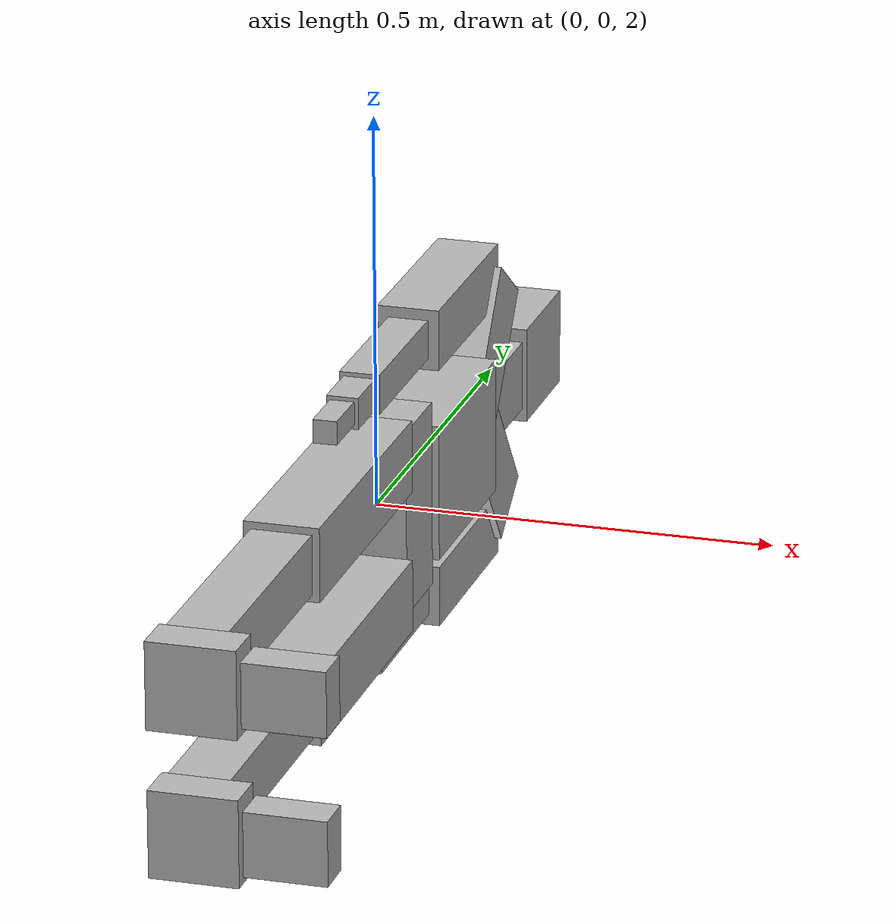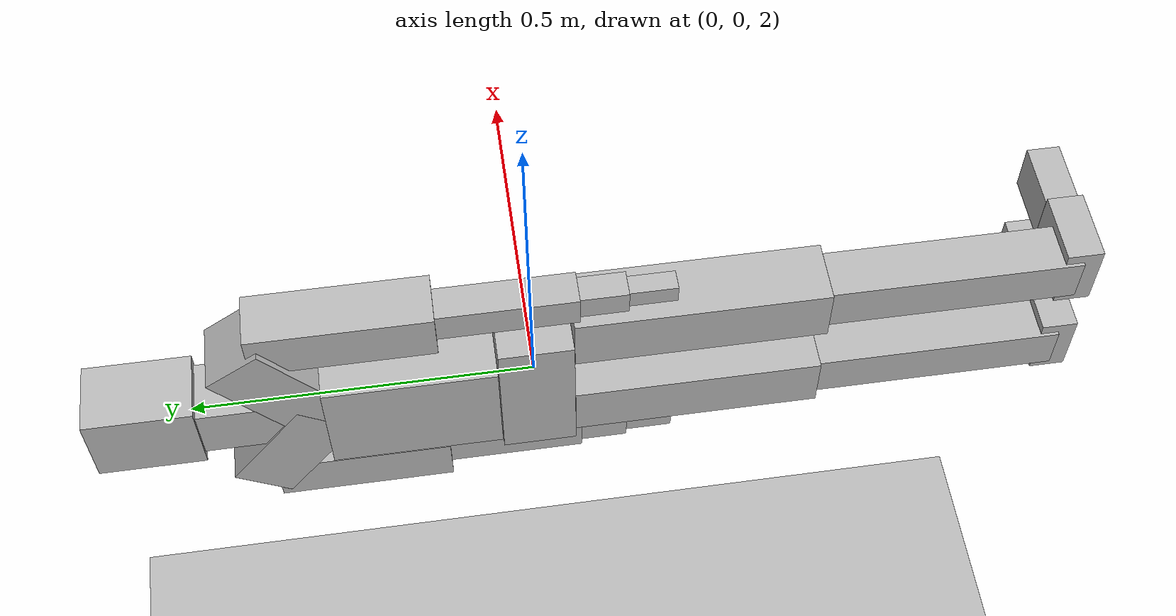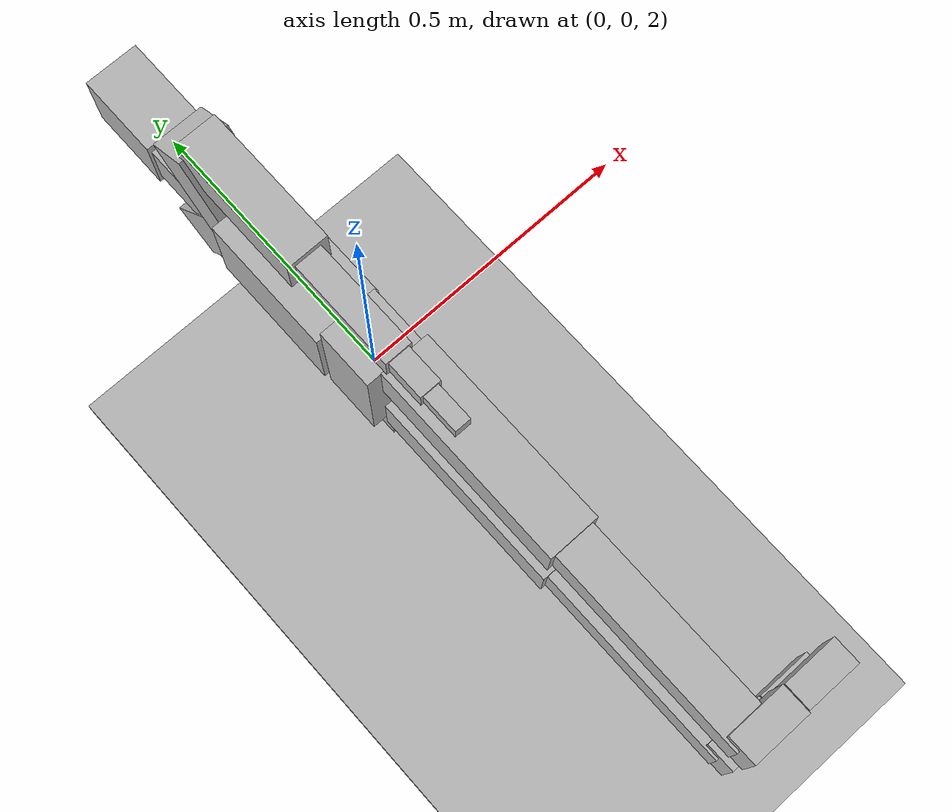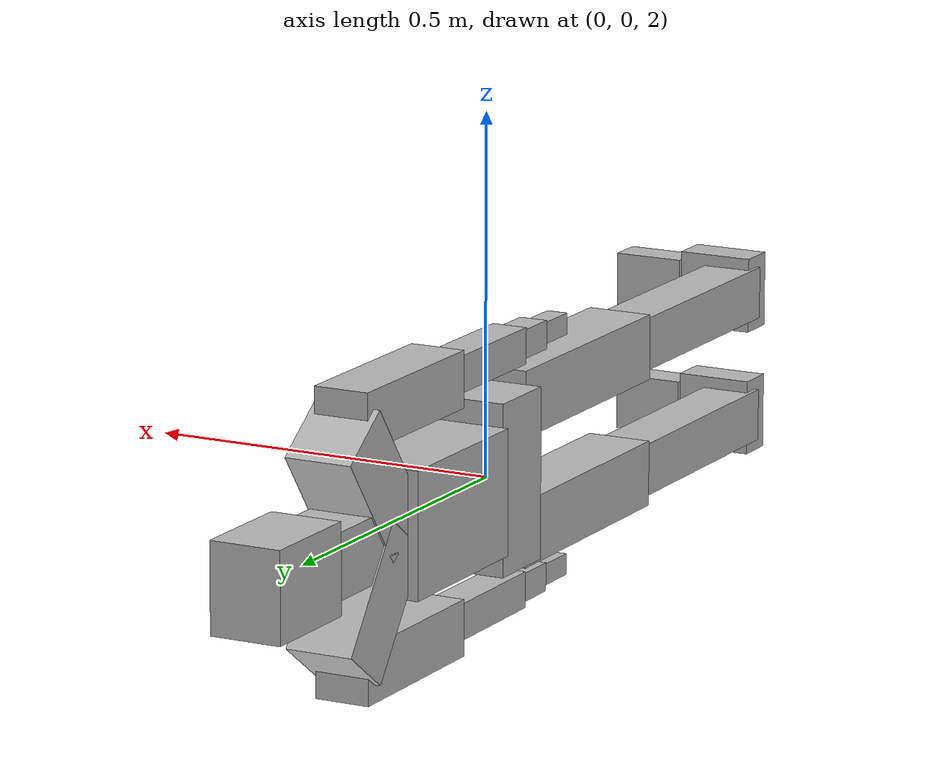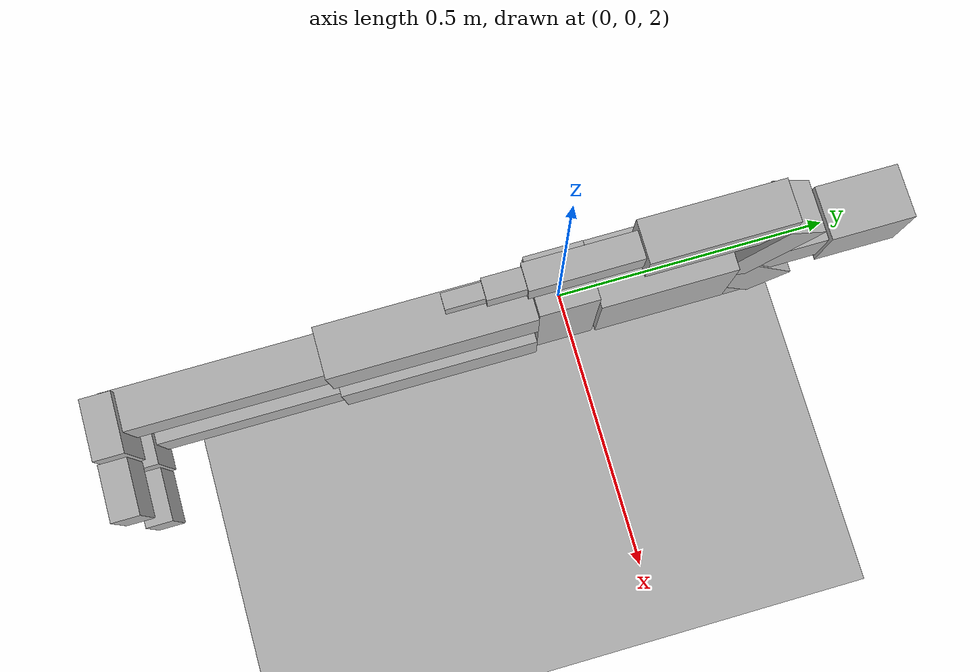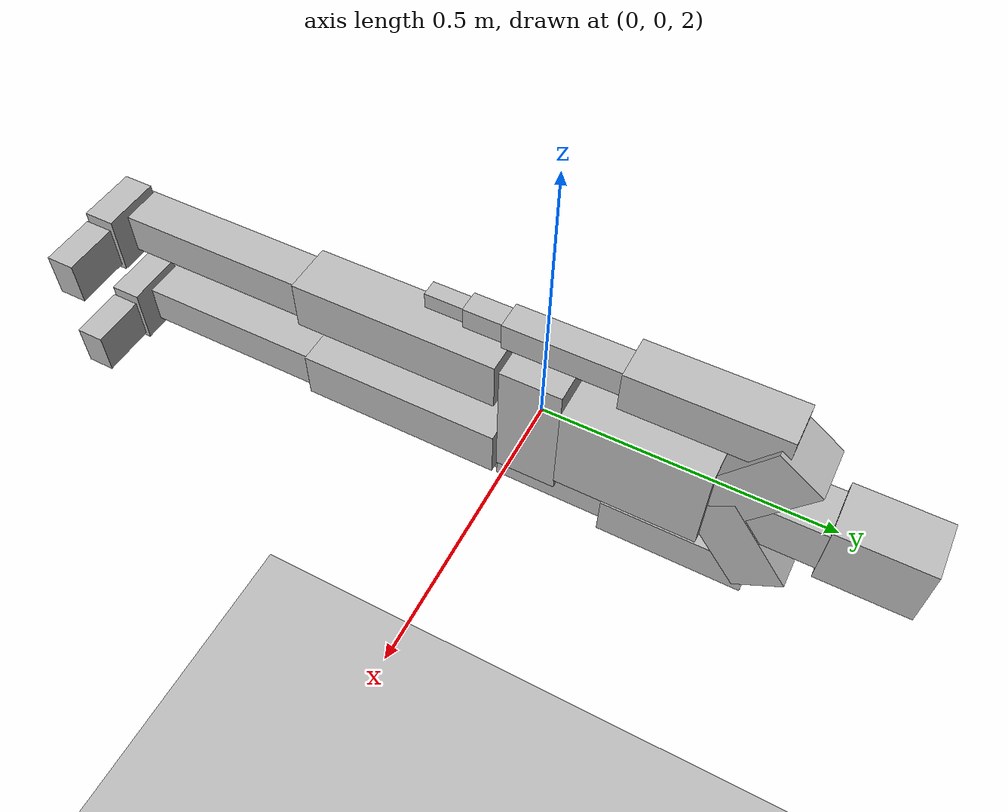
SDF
<sdf version="1.4">
 <world name="default">
  <physics type="ode">
   <gravity>0 0 -9.81</gravity>
   <max_step_size>0.001</max_step_size>
   <real_time_factor>1</real_time_factor>
   <real_time_update_rate>1000</real_time_update_rate>
   <ode>
    <solver><type>quick</type><iters>50</iters><sor>1.4</sor></solver>
    <constraints>
     <cfm>0</cfm>
     <erp>1</erp>
     <contact_max_correcting_vel>0</contact_max_correcting_vel>
     <contact_surface_layer>0</contact_surface_layer>
    </constraints>
   </ode>
  </physics>
  <model name="ground_model">
   <static>true</static>
   <link name="ground_link">
    <must_be_base_link>true</must_be_base_link>
    <visual name="visual">
     <geometry><box><size>10.0 10. 0.1</size></box></geometry>
     <material><script>Gazebo/WoodPallet</script></material>
    </visual>
    <collision name="collision"><geometry><box><size>10.0 10.0 0.1</size></box></geometry></collision>
   </link>
  </model>
  <model name="human_model">
   <pose>0 0 2 0 0 0</pose>
   <link name="h_pelvis">
    <self_collide>true</self_collide>
    <inertial><mass>5.6154</mass></inertial>
    <visual name="visual"><geometry><box><size>0.1088 0.1088 0.23936</size></box></geometry></visual>
    <collision name="collision"><geometry><box><size>0.1088 0.1088 0.23936</size></box></geometry></collision>
   </link>
   <link name="h_thigh_left">
    <self_collide>true</self_collide>
    <pose>0.01649408 -0.05774016 -0.09072832 0.0 0.0 0.0</pose>
    <inertial><mass>6.5709</mass></inertial>
    <visual name="visual">
     <pose>0.0 -0.18605 0.0 0.0 0.0 0.0</pose>
     <geometry><box><size>0.093025 0.3721 0.093025</size></box></geometry>
    </visual>
    <collision name="collision">
     <pose>0.0 -0.18605 0.0 0.0 0.0 0.0</pose>
     <geometry><box><size>0.093025 0.3721 0.093025</size></box></geometry>
    </collision>
   </link>
   <link name="h_shin_left">
    <self_collide>true</self_collide>
    <pose>0.01649408 -0.42984016 -0.09072832 0.0 0.0 0.0</pose>
    <inertial><mass>1.7738</mass></inertial>
    <visual name="visual">
     <pose>0.0 -0.18685 0.0 0.0 0.0 0.0</pose>
     <geometry><box><size>0.07474 0.3737 0.07474</size></box></geometry>
    </visual>
    <collision name="collision">
     <pose>0.0 -0.18685 0.0 0.0 0.0 0.0</pose>
     <geometry><box><size>0.07474 0.3737 0.07474</size></box></geometry>
    </collision>
   </link>
   <link name="h_heel_left">
    <self_collide>true</self_collide>
    <pose>0.01649408 -0.80354016 -0.09072832 0.0 0.0 0.0</pose>
    <inertial><mass>0.5831</mass></inertial>
    <visual name="visual">
     <pose>0.0216 0.0 0.0 0.0 0.0 0.0</pose>
     <geometry><box><size>0.1080 0.0540 0.1080</size></box></geometry>
    </visual>
    <collision name="collision">
     <pose>0.0216 0.0 0.0 0.0 0.0 0.0</pose>
     <geometry><box><size>0.1080 0.0540 0.1080</size></box></geometry>
    </collision>
   </link>
   <link name="h_toe_left">
    <self_collide>true</self_collide>
    <pose>0.12649408 -0.80354016 -0.09072832 0.0 0.0 0.0</pose>
    <inertial><mass>0.50</mass></inertial>
    <visual name="visual">
     <pose>0.02 0.0 0.0 0.0 0.0 0.0</pose>
     <geometry><box><size>0.1000 0.0500 0.0800</size></box></geometry>
    </visual>
    <collision name="collision">
     <pose>0.02 0.0 0.0 0.0 0.0 0.0</pose>
     <geometry><box><size>0.1000 0.0500 0.0800</size></box></geometry>
    </collision>
   </link>
   <link name="h_thigh_right">
    <self_collide>true</self_collide>
    <pose>0.01649408 -0.05774016 0.09072832 0.0 0.0 0.0</pose>
    <inertial><mass>6.5709</mass></inertial>
    <visual name="visual">
     <pose>0.0 -0.18605 0.0 0.0 0.0 0.0</pose>
     <geometry><box><size>0.093025 0.3721 0.093025</size></box></geometry>
    </visual>
    <collision name="collision">
     <pose>0.0 -0.18605 0.0 0.0 0.0 0.0</pose>
     <geometry><box><size>0.093025 0.3721 0.093025</size></box></geometry>
    </collision>
   </link>
   <link name="h_shin_right">
    <self_collide>true</self_collide>
    <pose>0.01649408 -0.42984016 0.09072832 0.0 0.0 0.0</pose>
    <inertial><mass>1.7738</mass></inertial>
    <visual name="visual">
     <pose>0.0 -0.18685 0.0 0.0 0.0 0.0</pose>
     <geometry><box><size>0.07474 0.3737 0.07474</size></box></geometry>
    </visual>
    <collision name="collision">
     <pose>0.0 -0.18685 0.0 0.0 0.0 0.0</pose>
     <geometry><box><size>0.07474 0.3737 0.07474</size></box></geometry>
    </collision>
   </link>
   <link name="h_heel_right">
    <self_collide>true</self_collide>
    <pose>0.01649408 -0.80354016 0.09072832 0.0 0.0 0.0</pose>
    <inertial><mass>0.5831</mass></inertial>
    <visual name="visual">
     <pose>0.0216 0.0 0.0 0.0 0.0 0.0</pose>
     <geometry><box><size>0.1080 0.0540 0.1080</size></box></geometry>
    </visual>
    <collision name="collision">
     <pose>0.0216 0.0 0.0 0.0 0.0 0.0</pose>
     <geometry><box><size>0.1080 0.0540 0.1080</size></box></geometry>
    </collision>
   </link>
   <link name="h_toe_right">
    <self_collide>true</self_collide>
    <pose>0.12649408 -0.80354016 0.09072832 0.0 0.0 0.0</pose>
    <inertial><mass>0.50</mass></inertial>
    <visual name="visual">
     <pose>0.02 0.0 0.0 0.0 0.0 0.0</pose>
     <geometry><box><size>0.1000 0.0500 0.0800</size></box></geometry>
    </visual>
    <collision name="collision">
     <pose>0.02 0.0 0.0 0.0 0.0 0.0</pose>
     <geometry><box><size>0.1000 0.0500 0.0800</size></box></geometry>
    </collision>
   </link>
   <link name="h_abdomen">
    <self_collide>true</self_collide>
    <pose>0.0 0.0562 0.0 0.0 0.0 0.0</pose>
    <inertial><mass>4.1846</mass></inertial>
    <visual name="visual">
     <pose>0.0 0.12535 0.0 0.0 0.0 0.0</pose>
     <geometry><box><size>0.12535 0.2507 0.17549</size></box></geometry>
    </visual>
    <collision name="collision">
     <pose>0.0 0.12535 0.0 0.0 0.0 0.0</pose>
     <geometry><box><size>0.12535 0.2507 0.17549</size></box></geometry>
    </collision>
   </link>
   <link name="h_spine">
    <self_collide>true</self_collide>
    <pose>0.0 0.3069 0.0 0.0 0.0 0.0</pose>
    <inertial><mass>4.8608</mass></inertial>
    <visual name="visual">
     <pose>0.0 0.0908 0.0 0.0 0.0 0.0</pose>
     <geometry><box><size>0.0908 0.1816 0.0908</size></box></geometry>
    </visual>
    <collision name="collision">
     <pose>0.0 0.0908 0.0 0.0 0.0 0.0</pose>
     <geometry><box><size>0.0908 0.1816 0.0908</size></box></geometry>
    </collision>
   </link>
   <link name="h_head">
    <self_collide>true</self_collide>
    <pose>0.0 0.4885 0.0 0.0 0.0 0.0</pose>
    <inertial><mass>3.92</mass></inertial>
    <visual name="visual">
     <pose>0.0 0.07825 0.0 0.0 0.0 0.0</pose>
     <geometry><box><size>0.101725 0.1565 0.1252</size></box></geometry>
    </visual>
    <collision name="collision">
     <pose>0.0 0.07825 0.0 0.0 0.0 0.0</pose>
     <geometry><box><size>0.101725 0.1565 0.1252</size></box></geometry>
    </collision>
   </link>
   <link name="h_scapula_left">
    <self_collide>true</self_collide>
    <pose>0.0 0.3069 0.0 -0.9423 0.0 0.0</pose>
    <inertial><mass>2.6264</mass></inertial>
    <visual name="visual">
     <pose>0.0 0.09615 0.0 0.0 0.0 0.0</pose>
     <geometry><box><size>0.09615 0.1923 0.09615</size></box></geometry>
    </visual>
    <collision name="collision">
     <pose>0.0 0.09615 0.0 0.0 0.0 0.0</pose>
     <geometry><box><size>0.09615 0.1923 0.09615</size></box></geometry>
    </collision>
   </link>
   <link name="h_bicep_left_midjoint">
    <self_collide>true</self_collide>
    <pose>0.0 0.397146 -0.169809 0.0 0.0 0.0</pose>
    <collision name="collision">
     <pose>0.0 -0.1308 0.0 0.0 0.0 0.0</pose>
     <geometry><box><size>0.07848 0.2616 0.07848</size></box></geometry>
    </collision>
   </link>
   <link name="h_bicep_left">
    <self_collide>true</self_collide>
    <pose>0.0 0.397146 -0.169809 0.0 0.0 0.0</pose>
    <inertial><mass>1.6219</mass></inertial>
    <visual name="visual">
     <pose>0.0 -0.1308 0.0 0.0 0.0 0.0</pose>
     <geometry><box><size>0.07848 0.2616 0.07848</size></box></geometry>
    </visual>
    <collision name="collision">
     <pose>0.0 -0.1308 0.0 0.0 0.0 0.0</pose>
     <geometry><box><size>0.07848 0.2616 0.07848</size></box></geometry>
    </collision>
   </link>
   <link name="h_forearm_left">
    <self_collide>true</self_collide>
    <pose>0.0 0.135546 -0.169809 0.0 0.0 0.0</pose>
    <inertial><mass>0.6909</mass></inertial>
    <visual name="visual">
     <pose>0.0 -0.1012 0.0 0.0 0.0 0.0</pose>
     <geometry><box><size>0.0506 0.2024 0.0506</size></box></geometry>
    </visual>
    <collision name="collision">
     <pose>0.0 -0.1012 0.0 0.0 0.0 0.0</pose>
     <geometry><box><size>0.0506 0.2024 0.0506</size></box></geometry>
    </collision>
   </link>
   <link name="h_hand_left">
    <self_collide>true</self_collide>
    <pose>0.0 -0.066854 -0.169809 0.0 0.0 0.0</pose>
    <inertial><mass>0.175</mass></inertial>
    <visual name="visual">
     <pose>0.0 -0.035 0.0 0.0 0.0 0.0</pose>
     <geometry><box><size>0.04 0.07 0.04</size></box></geometry>
    </visual>
    <collision name="collision">
     <pose>0.0 -0.035 0.0 0.0 0.0 0.0</pose>
     <geometry><box><size>0.04 0.07 0.04</size></box></geometry>
    </collision>
   </link>
   <link name="h_hand_left2">
    <self_collide>true</self_collide>
    <pose>0.0 -0.137 -0.169809 0.0 0.0 0.0</pose>
    <inertial><mass>0.12</mass></inertial>
    <visual name="visual">
     <pose>0.0 -0.035 0.0 0.0 0.0 0.0</pose>
     <geometry><box><size>0.03 0.07 0.03</size></box></geometry>
    </visual>
    <collision name="collision">
     <pose>0.0 -0.035 0.0 0.0 0.0 0.0</pose>
     <geometry><box><size>0.03 0.07 0.03</size></box></geometry>
    </collision>
   </link>
   <link name="h_scapula_right">
    <self_collide>true</self_collide>
    <pose>0.0 0.3069 0.0 0.9423 0.0 0.0</pose>
    <inertial><mass>2.6264</mass></inertial>
    <visual name="visual">
     <pose>0.0 0.09615 0.0 0.0 0.0 0.0</pose>
     <geometry><box><size>0.09615 0.1923 0.09615</size></box></geometry>
    </visual>
    <collision name="collision">
     <pose>0.0 0.09615 0.0 0.0 0.0 0.0</pose>
     <geometry><box><size>0.09615 0.1923 0.09615</size></box></geometry>
    </collision>
   </link>
   <link name="h_bicep_right_midjoint">
    <self_collide>true</self_collide>
    <pose>0.0 0.397146 0.169809 0.0 0.0 0.0</pose>
    <collision name="collision">
     <pose>0.0 -0.1308 0.0 0.0 0.0 0.0</pose>
     <geometry><box><size>0.07848 0.2616 0.07848</size></box></geometry>
    </collision>
   </link>
   <link name="h_bicep_right">
    <self_collide>true</self_collide>
    <pose>0.0 0.397146 0.169809 0.0 0.0 0.0</pose>
    <inertial><mass>1.6219</mass></inertial>
    <visual name="visual">
     <pose>0.0 -0.1308 0.0 0.0 0.0 0.0</pose>
     <geometry><box><size>0.07848 0.2616 0.07848</size></box></geometry>
    </visual>
    <collision name="collision">
     <pose>0.0 -0.1308 0.0 0.0 0.0 0.0</pose>
     <geometry><box><size>0.07848 0.2616 0.07848</size></box></geometry>
    </collision>
   </link>
   <link name="h_forearm_right">
    <self_collide>true</self_collide>
    <pose>0.0 0.135546 0.169809 0.0 0.0 0.0</pose>
    <inertial><mass>0.6909</mass></inertial>
    <visual name="visual">
     <pose>0.0 -0.1012 0.0 0.0 0.0 0.0</pose>
     <geometry><box><size>0.0506 0.2024 0.0506</size></box></geometry>
    </visual>
    <collision name="collision">
     <pose>0.0 -0.1012 0.0 0.0 0.0 0.0</pose>
     <geometry><box><size>0.0506 0.2024 0.0506</size></box></geometry>
    </collision>
   </link>
   <link name="h_hand_right">
    <self_collide>true</self_collide>
    <pose>0.0 -0.066854 0.169809 0.0 0.0 0.0</pose>
    <inertial><mass>0.175</mass></inertial>
    <visual name="visual">
     <pose>0.0 -0.035 0.0 0.0 0.0 0.0</pose>
     <geometry><box><size>0.04 0.07 0.04</size></box></geometry>
    </visual>
    <collision name="collision">
     <pose>0.0 -0.035 0.0 0.0 0.0 0.0</pose>
     <geometry><box><size>0.04 0.07 0.04</size></box></geometry>
    </collision>
   </link>
   <link name="h_hand_right2">
    <self_collide>true</self_collide>
    <pose>0.0 -0.137 0.169809 0.0 0.0 0.0</pose>
    <inertial><mass>0.12</mass></inertial>
    <visual name="visual">
     <pose>0.0 -0.035 0.0 0.0 0.0 0.0</pose>
     <geometry><box><size>0.03 0.07 0.03</size></box></geometry>
    </visual>
    <collision name="collision">
     <pose>0.0 -0.035 0.0 0.0 0.0 0.0</pose>
     <geometry><box><size>0.03 0.07 0.03</size></box></geometry>
    </collision>
   </link>
   <joint type="ball" name="j_pelvis"><parent>world</parent><child>h_head</child></joint>
   <joint type="ball" name="j_thigh_left"><parent>h_pelvis</parent><child>h_thigh_left</child></joint>
   <joint type="revolute" name="j_shin_left">
    <parent>h_thigh_left</parent>
    <child>h_shin_left</child>
    <axis><xyz>0.0 0.0 1.0</xyz><limit><lower>-2.6416</lower><upper>0</upper></limit></axis>
   </joint>
   <joint type="revolute2" name="j_heel_left">
    <parent>h_shin_left</parent>
    <child>h_heel_left</child>
    <axis><xyz>0.0 0.0 1.0</xyz><limit><lower>-1.136</lower><upper>0.350</upper></limit></axis>
    <axis2><xyz>0.0 1.0 0.0</xyz><limit><lower>-0.2854</lower><upper>0.3854</upper></limit></axis2>
   </joint>
   <joint type="revolute" name="j_toe_left">
    <parent>h_heel_left</parent>
    <child>h_toe_left</child>
    <axis><xyz>0.0 0.0 1.0</xyz><limit><lower>-0.4236</lower><upper>0.5536</upper></limit></axis>
   </joint>
   <joint type="ball" name="j_thigh_right"><parent>h_pelvis</parent><child>h_thigh_right</child></joint>
   <joint type="revolute" name="j_shin_right">
    <parent>h_thigh_right</parent>
    <child>h_shin_right</child>
    <axis><xyz>0.0 0.0 1.0</xyz><limit><lower>-2.6416</lower><upper>0</upper></limit></axis>
   </joint>
   <joint type="revolute2" name="j_heel_right">
    <parent>h_shin_right</parent>
    <child>h_heel_right</child>
    <axis><xyz>0.0 0.0 1.0</xyz><limit><lower>-1.136</lower><upper>0.350</upper></limit></axis>
    <axis2><xyz>0.0 1.0 0.0</xyz><limit><lower>-0.2854</lower><upper>0.3854</upper></limit></axis2>
   </joint>
   <joint type="revolute" name="j_toe_right">
    <parent>h_heel_right</parent>
    <child>h_toe_right</child>
    <axis><xyz>0.0 0.0 1.0</xyz><limit><lower>-0.4236</lower><upper>0.5536</upper></limit></axis>
   </joint>
   <joint type="revolute2" name="j_abdomen">
    <parent>h_pelvis</parent>
    <child>h_abdomen</child>
    <axis><xyz>1.0 0.0 0.0</xyz><limit><lower>-0.5</lower><upper>0.5</upper></limit></axis>
    <axis2><xyz>0.0 0.0 1.0</xyz><limit><lower>-0.85</lower><upper>0.5</upper></limit></axis2>
   </joint>
   <joint type="revolute" name="j_spine">
    <parent>h_abdomen</parent>
    <child>h_spine</child>
    <axis><xyz>0.0 1.0 0.0</xyz><limit><lower>-1</lower><upper>1</upper></limit></axis>
   </joint>
   <joint type="revolute2" name="j_head">
    <parent>h_spine</parent>
    <child>h_head</child>
    <axis><xyz>0.0 0.0 1.0</xyz><limit><lower>-1.0472</lower><upper>1.0472</upper></limit></axis>
    <axis2><xyz>1.0 0.0 0.0</xyz><limit><lower>-1.0472</lower><upper>1.0472</upper></limit></axis2>
   </joint>
   <joint type="revolute" name="j_scapula_left">
    <parent>h_spine</parent>
    <child>h_scapula_left</child>
    <axis><xyz>1.0 0.0 0.0</xyz><limit><lower>-0.2491</lower><upper>0.2491</upper></limit></axis>
   </joint>
   <joint type="ball" name="j_bicep_left">
    <pose>0.0 0.0 0.0 -1.2423 0.0 0.0</pose>
    <parent>h_scapula_left</parent>
    <child>h_bicep_left_midjoint</child>
   </joint>
   <joint type="revolute" name="j_becip_left_roll">
    <parent>h_bicep_left_midjoint</parent>
    <child>h_bicep_left</child>
    <axis><xyz>0.0 1.0 0.0</xyz><limit><lower>-1.3</lower><upper>0.7</upper></limit></axis>
   </joint>
   <joint type="revolute2" name="j_forearm_left">
    <parent>h_bicep_left</parent>
    <child>h_forearm_left</child>
    <axis><xyz>0.0 0.0 1.0</xyz><limit><lower>0</lower><upper>2.7</upper></limit></axis>
    <axis2><xyz>0.0 1.0 0.0</xyz><limit><lower>-3</lower><upper>0</upper></limit></axis2>
   </joint>
   <joint type="revolute2" name="j_wrist_left">
    <parent>h_forearm_left</parent>
    <child>h_hand_left</child>
    <axis><xyz>0.0 0.0 1.0</xyz><limit><lower>-1</lower><upper>1</upper></limit></axis>
    <axis2><xyz>1.0 0.0 0.0</xyz><limit><lower>-0.5</lower><upper>0.5</upper></limit></axis2>
   </joint>
   <joint type="revolute" name="j_hand_left">
    <parent>h_hand_left</parent>
    <child>h_hand_left2</child>
    <axis><xyz>0 0.0 1.0</xyz><limit><lower>-0.5</lower><upper>01.6</upper></limit></axis>
   </joint>
   <joint type="revolute" name="j_scapula_right">
    <parent>h_spine</parent>
    <child>h_scapula_right</child>
    <axis><xyz>1.0 0.0 0.0</xyz><limit><lower>-0.2491</lower><upper>0.2491</upper></limit></axis>
   </joint>
   <joint type="ball" name="j_bicep_right">
    <pose>0.0 0.0 0.0 1.2423 0.0 0.0</pose>
    <parent>h_scapula_right</parent>
    <child>h_bicep_right_midjoint</child>
   </joint>
   <joint type="revolute" name="j_becip_right_roll">
    <parent>h_bicep_right_midjoint</parent>
    <child>h_bicep_right</child>
    <axis><xyz>0.0 1.0 0.0</xyz><limit><lower>-0.7</lower><upper>1.3</upper></limit></axis>
   </joint>
   <joint type="revolute2" name="j_forearm_right">
    <parent>h_bicep_right</parent>
    <child>h_forearm_right</child>
    <axis><xyz>0.0 0.0 1.0</xyz><limit><lower>0</lower><upper>2.7</upper></limit></axis>
    <axis2><xyz>0.0 1.0 0.0</xyz><limit><lower>0</lower><upper>3</upper></limit></axis2>
   </joint>
   <joint type="revolute2" name="j_wrist_right">
    <parent>h_forearm_right</parent>
    <child>h_hand_right</child>
    <axis><xyz>0.0 0.0 1.0</xyz><limit><lower>-1.2</lower><upper>1.5</upper></limit></axis>
    <axis2><xyz>1.0 0.0 0.0</xyz><limit><lower>-0.5</lower><upper>0.5</upper></limit></axis2>
   </joint>
   <joint type="revolute" name="j_hand_right">
    <parent>h_hand_right</parent>
    <child>h_hand_right2</child>
    <axis><xyz>0.0 0.0 1.0</xyz><limit><lower>-0.5</lower><upper>01.6</upper></limit></axis>
   </joint>
  </model>
 </world>
</sdf>
